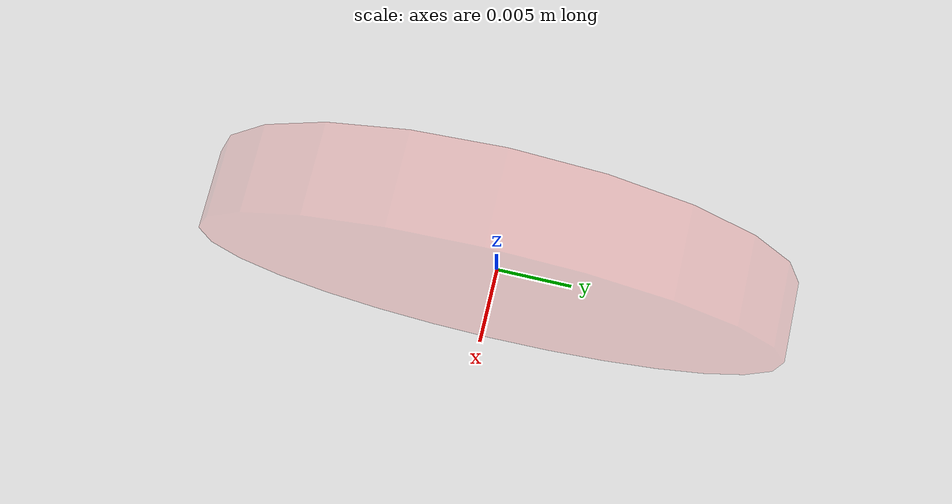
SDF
<?xml version='1.0'?>
<sdf version='1.7'>
  <model name='flashlight2'>
      <pose>0 0 0 0 0 0</pose>

        <link name='light_source2'>
          <pose>0 0 0.0 0 0 0</pose>
          <inertial>
            <mass>0.0025</mass>
            <inertia>
              <ixx>1.0e-05</ixx>
              <ixy>0</ixy>
              <ixz>0</ixz>
              <iyy>1.0e-05</iyy>
              <iyz>0</iyz>
              <izz>1.0e-05</izz>
            </inertia>
          </inertial>
          <light name='lamp2' type='spot'>3
            <pose>0 0 0.0 0 0 0</pose>
            <attenuation>
              <range>1</range>
              <linear>0</linear>
              <constant>0.1</constant>
              <quadratic>0.01</quadratic>
            </attenuation>
            <diffuse>1 0 0 1</diffuse>
            <specular>1 0 0 1</specular>
            <spot>
              <inner_angle>1</inner_angle>
              <outer_angle>1.1</outer_angle>
              <falloff>1</falloff>
            </spot>
            <direction>0 0 -1</direction>
          </light>
          <visual name='lamp2'>
            <geometry>
              <cylinder>
                <radius>0.019</radius>
                <length>0.005</length>
              </cylinder>
            </geometry>
            <transparency>0.8</transparency>
            <material>
              <ambient>1 0.2 0.2 1</ambient>
              <diffuse>1 0.2 0.2 1</diffuse>
              <specular>1 1 1 1</specular>
              <emissive>1 0.2 0.2 1</emissive>
            </material>
            <pose>0 0 0 0 -1.5708 0</pose>
          </visual>
        </link>
        <plugin name='light_control2' filename='libledPlugin.so'>
              <enable>true</enable>
              <light>
                <id>light_source2/lamp2</id>
                <duration>0.5</duration>
                <interval>0.5</interval>
              </light>
        </plugin>
      </model>
</sdf>
